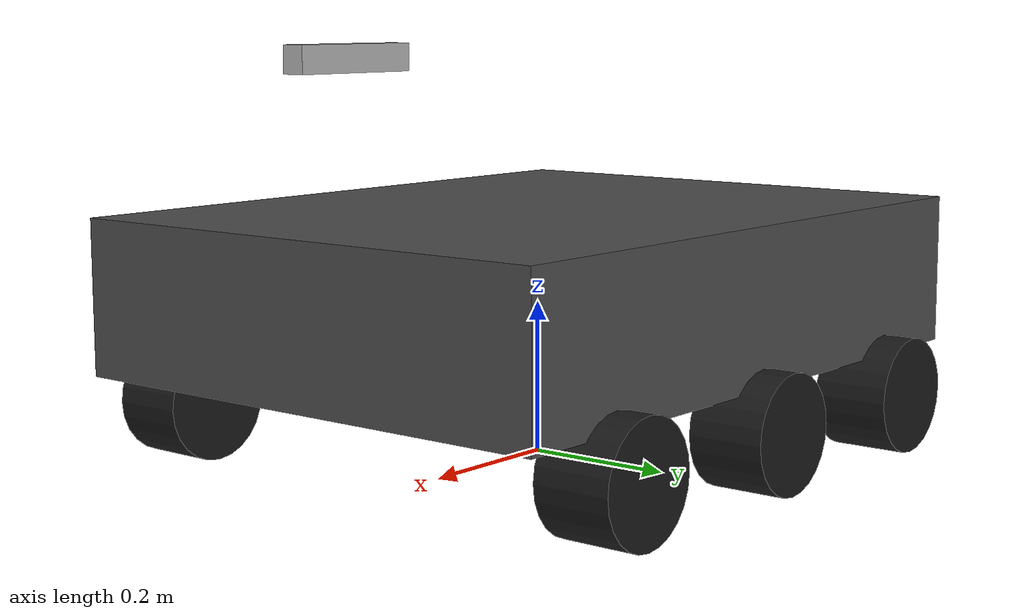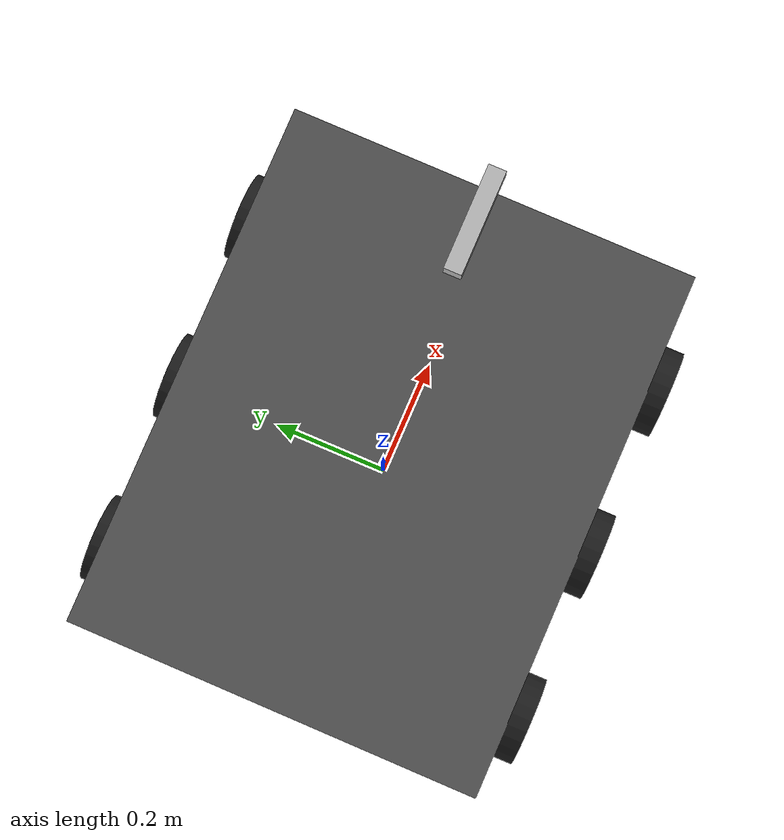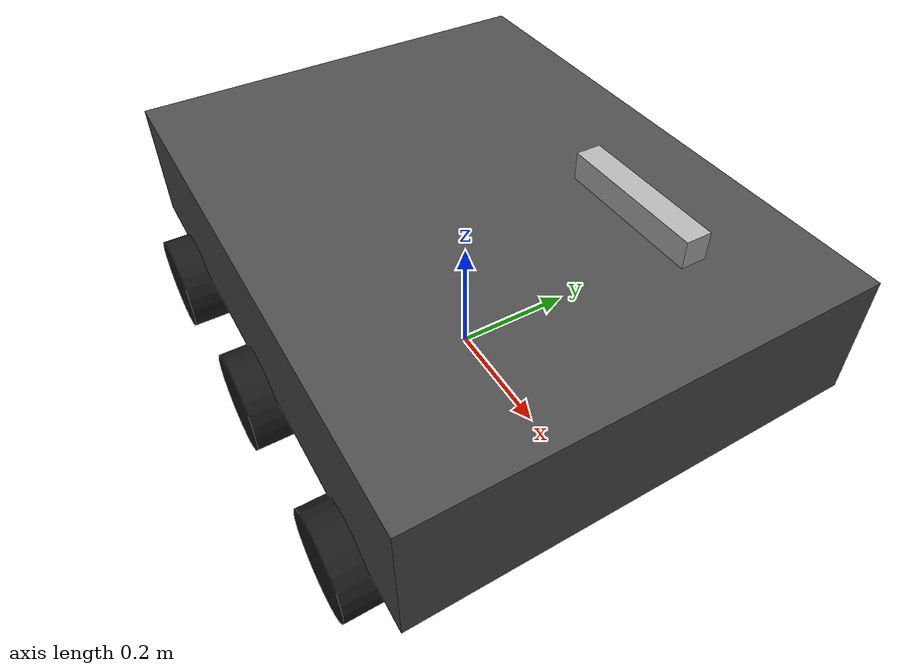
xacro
<?xml version="1.0"?>
<robot xmlns:xacro="http://www.ros.org/wiki/xacro" name="rover">

  <!-- Properties -->
  <xacro:property name="chassis_length" value="0.9"/>
  <xacro:property name="chassis_width" value="0.7"/>
  <xacro:property name="chassis_height" value="0.2"/>
  <xacro:property name="chassis_z_offset" value="0.15"/>

  <xacro:property name="wheel_radius" value="0.0762"/>
  <xacro:property name="wheel_width" value="0.1"/>
  <xacro:property name="track_width" value="0.686"/>

  <xacro:property name="wheelbase_front" value="0.3"/>
  <xacro:property name="wheelbase_rear" value="-0.3"/>

  <xacro:property name="camera_x" value="0.35"/>
  <xacro:property name="camera_z" value="0.45"/>

  <!-- ZED2i geometry constants from zed_wrapper macro -->
  <xacro:property name="zed_height" value="0.03"/>
  <xacro:property name="zed_baseline" value="0.12"/>
  <xacro:property name="zed_optical_offset_x" value="-0.01"/>

  <!-- Base footprint (ground plane projection) -->
  <link name="base_footprint"/>

  <!-- Base link -->
  <link name="base_link">
    <visual>
      <origin xyz="0 0 ${chassis_z_offset}" rpy="0 0 0"/>
      <geometry>
        <box size="${chassis_length} ${chassis_width} ${chassis_height}"/>
      </geometry>
      <material name="dark_gray">
        <color rgba="0.3 0.3 0.3 1.0"/>
      </material>
    </visual>
    <collision>
      <origin xyz="0 0 ${chassis_z_offset}" rpy="0 0 0"/>
      <geometry>
        <box size="${chassis_length} ${chassis_width} ${chassis_height}"/>
      </geometry>
    </collision>
  </link>

  <joint name="base_footprint_joint" type="fixed">
    <parent link="base_footprint"/>
    <child link="base_link"/>
    <origin xyz="0 0 ${wheel_radius}" rpy="0 0 0"/>
  </joint>

  <!-- Wheel macro -->
  <xacro:macro name="wheel" params="name x y">
    <link name="${name}_link">
      <visual>
        <geometry>
          <cylinder radius="${wheel_radius}" length="${wheel_width}"/>
        </geometry>
        <material name="black">
          <color rgba="0.1 0.1 0.1 1.0"/>
        </material>
      </visual>
      <collision>
        <geometry>
          <cylinder radius="${wheel_radius}" length="${wheel_width}"/>
        </geometry>
      </collision>
    </link>
    <joint name="${name}_joint" type="fixed">
      <parent link="base_link"/>
      <child link="${name}_link"/>
      <origin xyz="${x} ${y} 0" rpy="${-pi/2} 0 0"/>
    </joint>
  </xacro:macro>

  <!-- Left wheels (y = +track_width/2) -->
  <xacro:wheel name="left_wheel_front"  x="${wheelbase_front}" y="${track_width/2}"/>
  <xacro:wheel name="left_wheel_mid"    x="0"                  y="${track_width/2}"/>
  <xacro:wheel name="left_wheel_rear"   x="${wheelbase_rear}"   y="${track_width/2}"/>

  <!-- Right wheels (y = -track_width/2) -->
  <xacro:wheel name="right_wheel_front" x="${wheelbase_front}"  y="${-track_width/2}"/>
  <xacro:wheel name="right_wheel_mid"   x="0"                   y="${-track_width/2}"/>
  <xacro:wheel name="right_wheel_rear"  x="${wheelbase_rear}"    y="${-track_width/2}"/>

  <!-- ZED 2i camera mount point -->
  <link name="zed_camera_link">
    <visual>
      <geometry>
        <box size="0.175 0.03 0.033"/>
      </geometry>
      <material name="silver">
        <color rgba="0.7 0.7 0.7 1.0"/>
      </material>
    </visual>
  </link>

  <joint name="zed_camera_joint" type="fixed">
    <parent link="base_link"/>
    <child link="zed_camera_link"/>
    <origin xyz="${camera_x} 0 ${camera_z}" rpy="0 0 0"/>
  </joint>

  <!-- ZED frame chain required by zed_wrapper positional tracking -->
  <link name="zed_camera_center"/>
  <joint name="zed_camera_center_joint" type="fixed">
    <parent link="zed_camera_link"/>
    <child link="zed_camera_center"/>
    <origin xyz="0 0 ${zed_height/2}" rpy="0 0 0"/>
  </joint>

  <link name="zed_left_camera_frame"/>
  <joint name="zed_left_camera_joint" type="fixed">
    <parent link="zed_camera_center"/>
    <child link="zed_left_camera_frame"/>
    <origin xyz="${zed_optical_offset_x} ${zed_baseline/2} 0" rpy="0 0 0"/>
  </joint>

  <link name="zed_left_camera_optical_frame"/>
  <joint name="zed_left_camera_optical_joint" type="fixed">
    <parent link="zed_left_camera_frame"/>
    <child link="zed_left_camera_optical_frame"/>
    <origin xyz="0 0 0" rpy="${-pi/2} 0 ${-pi/2}"/>
  </joint>

  <link name="zed_right_camera_frame"/>
  <joint name="zed_right_camera_joint" type="fixed">
    <parent link="zed_camera_center"/>
    <child link="zed_right_camera_frame"/>
    <origin xyz="${zed_optical_offset_x} ${-zed_baseline/2} 0" rpy="0 0 0"/>
  </joint>

  <link name="zed_right_camera_optical_frame"/>
  <joint name="zed_right_camera_optical_joint" type="fixed">
    <parent link="zed_right_camera_frame"/>
    <child link="zed_right_camera_optical_frame"/>
    <origin xyz="0 0 0" rpy="${-pi/2} 0 ${-pi/2}"/>
  </joint>

  <!-- Compatibility aliases for zed_wrapper frame naming variants -->
  <link name="zed_base_link"/>
  <joint name="zed_base_link_joint" type="fixed">
    <parent link="zed_camera_link"/>
    <child link="zed_base_link"/>
    <origin xyz="0 0 0" rpy="0 0 0"/>
  </joint>

  <link name="zed_left_camera"/>
  <joint name="zed_left_camera_alias_joint" type="fixed">
    <parent link="zed_left_camera_frame"/>
    <child link="zed_left_camera"/>
    <origin xyz="0 0 0" rpy="0 0 0"/>
  </joint>

  <link name="zed_left_camera_optical"/>
  <joint name="zed_left_camera_optical_alias_joint" type="fixed">
    <parent link="zed_left_camera_optical_frame"/>
    <child link="zed_left_camera_optical"/>
    <origin xyz="0 0 0" rpy="0 0 0"/>
  </joint>

  <link name="zed_right_camera"/>
  <joint name="zed_right_camera_alias_joint" type="fixed">
    <parent link="zed_right_camera_frame"/>
    <child link="zed_right_camera"/>
    <origin xyz="0 0 0" rpy="0 0 0"/>
  </joint>

  <link name="zed_right_camera_optical"/>
  <joint name="zed_right_camera_optical_alias_joint" type="fixed">
    <parent link="zed_right_camera_optical_frame"/>
    <child link="zed_right_camera_optical"/>
    <origin xyz="0 0 0" rpy="0 0 0"/>
  </joint>

  <!-- Extra compatibility aliases for camera-model-prefixed frame variants -->
  <link name="zed2i_camera_link"/>
  <joint name="zed2i_camera_link_alias_joint" type="fixed">
    <parent link="zed_camera_link"/>
    <child link="zed2i_camera_link"/>
    <origin xyz="0 0 0" rpy="0 0 0"/>
  </joint>

  <link name="zed2i_base_link"/>
  <joint name="zed2i_base_link_alias_joint" type="fixed">
    <parent link="zed_base_link"/>
    <child link="zed2i_base_link"/>
    <origin xyz="0 0 0" rpy="0 0 0"/>
  </joint>

  <link name="zed2i_camera_center"/>
  <joint name="zed2i_camera_center_alias_joint" type="fixed">
    <parent link="zed_camera_center"/>
    <child link="zed2i_camera_center"/>
    <origin xyz="0 0 0" rpy="0 0 0"/>
  </joint>

  <link name="zed2i_left_camera_frame"/>
  <joint name="zed2i_left_camera_frame_alias_joint" type="fixed">
    <parent link="zed_left_camera_frame"/>
    <child link="zed2i_left_camera_frame"/>
    <origin xyz="0 0 0" rpy="0 0 0"/>
  </joint>

  <link name="zed2i_left_camera_optical_frame"/>
  <joint name="zed2i_left_camera_optical_frame_alias_joint" type="fixed">
    <parent link="zed_left_camera_optical_frame"/>
    <child link="zed2i_left_camera_optical_frame"/>
    <origin xyz="0 0 0" rpy="0 0 0"/>
  </joint>

  <link name="zed2i_right_camera_frame"/>
  <joint name="zed2i_right_camera_frame_alias_joint" type="fixed">
    <parent link="zed_right_camera_frame"/>
    <child link="zed2i_right_camera_frame"/>
    <origin xyz="0 0 0" rpy="0 0 0"/>
  </joint>

  <link name="zed2i_right_camera_optical_frame"/>
  <joint name="zed2i_right_camera_optical_frame_alias_joint" type="fixed">
    <parent link="zed_right_camera_optical_frame"/>
    <child link="zed2i_right_camera_optical_frame"/>
    <origin xyz="0 0 0" rpy="0 0 0"/>
  </joint>

</robot>
